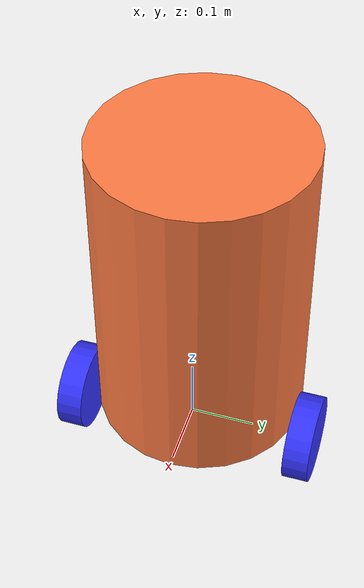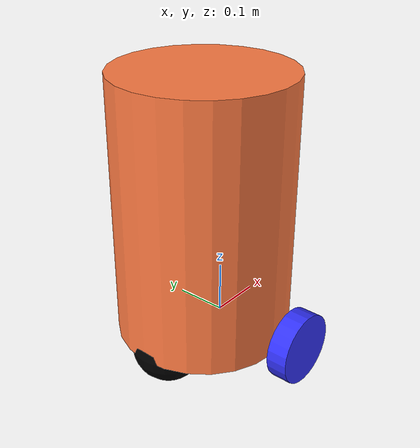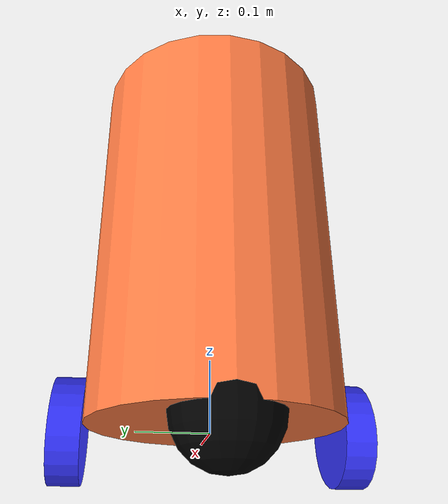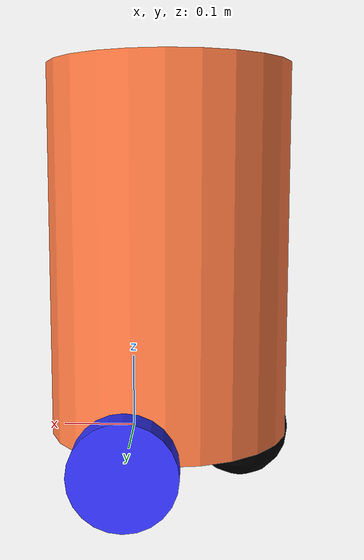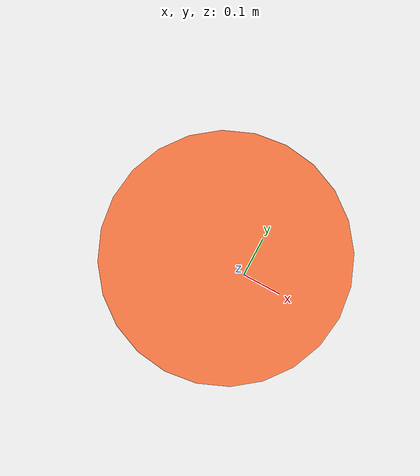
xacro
<?xml version="1.0" ?>
<robot xmlns:xacro="http://www.ros.org/wiki/xacro">
<xacro:include filename="inertial_macros.xacro" />

    <material name="white">
        <color rgba="1 1 1 1" />
    </material>

    <material name="orange">
        <color rgba="1 0.48 0.26 1" />
    </material>

    <material name="blue">
        <color rgba="0.2 0.2 1 1" />
    </material>

    <material name="black">
        <color rgba="0 0 0 1" />
    </material>

    <material name="red">
        <color rgba="1 0 0 1" />
    </material>

    <!-- LINKS -->

    <link name="base_link" />

    <joint name="chassis_joint" type="fixed">
        <parent link="base_link" />
        <child link="chassis" />
        <origin xyz="-0.1 0 0" />
    </joint>

    <link name="chassis">
        <visual>
            <origin xyz="0.05 0 0.25" rpy="0 0 0" />
            <geometry>
                <cylinder length="0.5" radius="0.165" />
            </geometry>
            <material name="orange" />
        </visual>
        <collision>
            <origin xyz="0.05 0 0.25" rpy="0 0 0" />
            <geometry>
                <cylinder length="0.5" radius="0.165" />
            </geometry>
        </collision>
        <xacro:inertial_box mass="0.5" x="0.3" y="0.3" z="0.15">
            <origin xyz="0.15 0 0.075" rpy="0 0 0" />
        </xacro:inertial_box>
    </link>

    <gazebo reference="chassis">
        <material>Gazebo/White</material>
    </gazebo>

    <!-- LEFT WHEEL -->

    <joint name="left_wheel_joint" type="continuous">
        <parent link="base_link" />
        <child link="left_wheel" />
        <origin xyz="0 0.185 0" rpy="-${pi/2} 0 0" />
        <axis xyz="0 0 1" />
    </joint>

    <link name="left_wheel">
        <visual>
            <geometry>
                <cylinder length="0.04" radius="0.068" />
            </geometry>
            <material name="blue" />
        </visual>
        <collision>
            <geometry>
                <cylinder length="0.04" radius="0.068" />
            </geometry>
            <material name="blue" />
        </collision>
        <xacro:inertial_cylinder mass="0.1" length="0.05" radius="0.068">
            <origin xyz="0 0 0" rpy="0 0 0" />
        </xacro:inertial_cylinder>
    </link>

    <gazebo reference="left_wheel">
        <material>Gazebo/Blue</material>
    </gazebo>

    <!-- RIGHT WHEEL -->

    <joint name="right_wheel_joint" type="continuous">
        <parent link="base_link" />
        <child link="right_wheel" />
s        <origin xyz="0 -0.185 0" rpy="${pi/2} 0 0" />
        <axis xyz="0 0 -1" />
    </joint>

    <link name="right_wheel">
        <visual>
            <geometry>
                <cylinder length="0.04" radius="0.068" />
            </geometry>
            <material name="blue" />
        </visual>
        <collision>
            <geometry>
                <cylinder length="0.04" radius="0.068" />
            </geometry>
            <material name="blue" />
        </collision>
        <xacro:inertial_sphere mass="0.1" radius="0.068">
            <origin xyz="0 0 0" rpy="0 0 0" />
        </xacro:inertial_sphere>
    </link>

    <gazebo reference="right_wheel">
        <material>Gazebo/Blue</material>
    </gazebo>

    <!-- CASTER WHEEL -->

    <joint name="caster_wheel_joint" type="fixed">
        <parent link="chassis" />
        <child link="caster_wheel" />
        <origin xyz="-0.05 0 0" rpy="0 0 0" />
    </joint>

    <link name="caster_wheel">
        <visual>
            <geometry>
                <sphere radius="0.068" />
            </geometry>
            <material name="black" />
        </visual>
        <collision>
            <geometry>
                <sphere radius="0.068" />
            </geometry>
            <material name="black" />
        </collision>
    </link>

    <gazebo reference="caster_wheel">
        <material>Gazebo/Black</material>
        <mu1 value="0.001"/>
        <mu2 value="0.001"/>
    </gazebo>

</robot>

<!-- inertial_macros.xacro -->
<robot xmlns:xacro="http://www.ros.org/wiki/xacro" >

    <!-- Specify some standard inertial calculations https://en.wikipedia.org/wiki/List_of_moments_of_inertia -->
    <!-- These make use of xacro's mathematical functionality -->

    <xacro:macro name="inertial_sphere" params="mass radius *origin">
        <inertial>
            <xacro:insert_block name="origin"/>
            <mass value="${mass}" />
            <inertia ixx="${(2/5) * mass * (radius*radius)}" ixy="0.0" ixz="0.0"
                    iyy="${(2/5) * mass * (radius*radius)}" iyz="0.0"
                    izz="${(2/5) * mass * (radius*radius)}" />
        </inertial>
    </xacro:macro>

    <xacro:macro name="inertial_box" params="mass x y z *origin">
        <inertial>
            <xacro:insert_block name="origin"/>
            <mass value="${mass}" />
            <inertia ixx="${(1/12) * mass * (y*y+z*z)}" ixy="0.0" ixz="0.0"
                    iyy="${(1/12) * mass * (x*x+z*z)}" iyz="0.0"
                    izz="${(1/12) * mass * (x*x+y*y)}" />
        </inertial>
    </xacro:macro>

    <xacro:macro name="inertial_cylinder" params="mass length radius *origin">
        <inertial>
            <xacro:insert_block name="origin"/>
            <mass value="${mass}" />
            <inertia ixx="${(1/12) * mass * (3*radius*radius + length*length)}" ixy="0.0" ixz="0.0"
                    iyy="${(1/12) * mass * (3*radius*radius + length*length)}" iyz="0.0"
                    izz="${(1/2) * mass * (radius*radius)}" />
        </inertial>
    </xacro:macro>

</robot>
